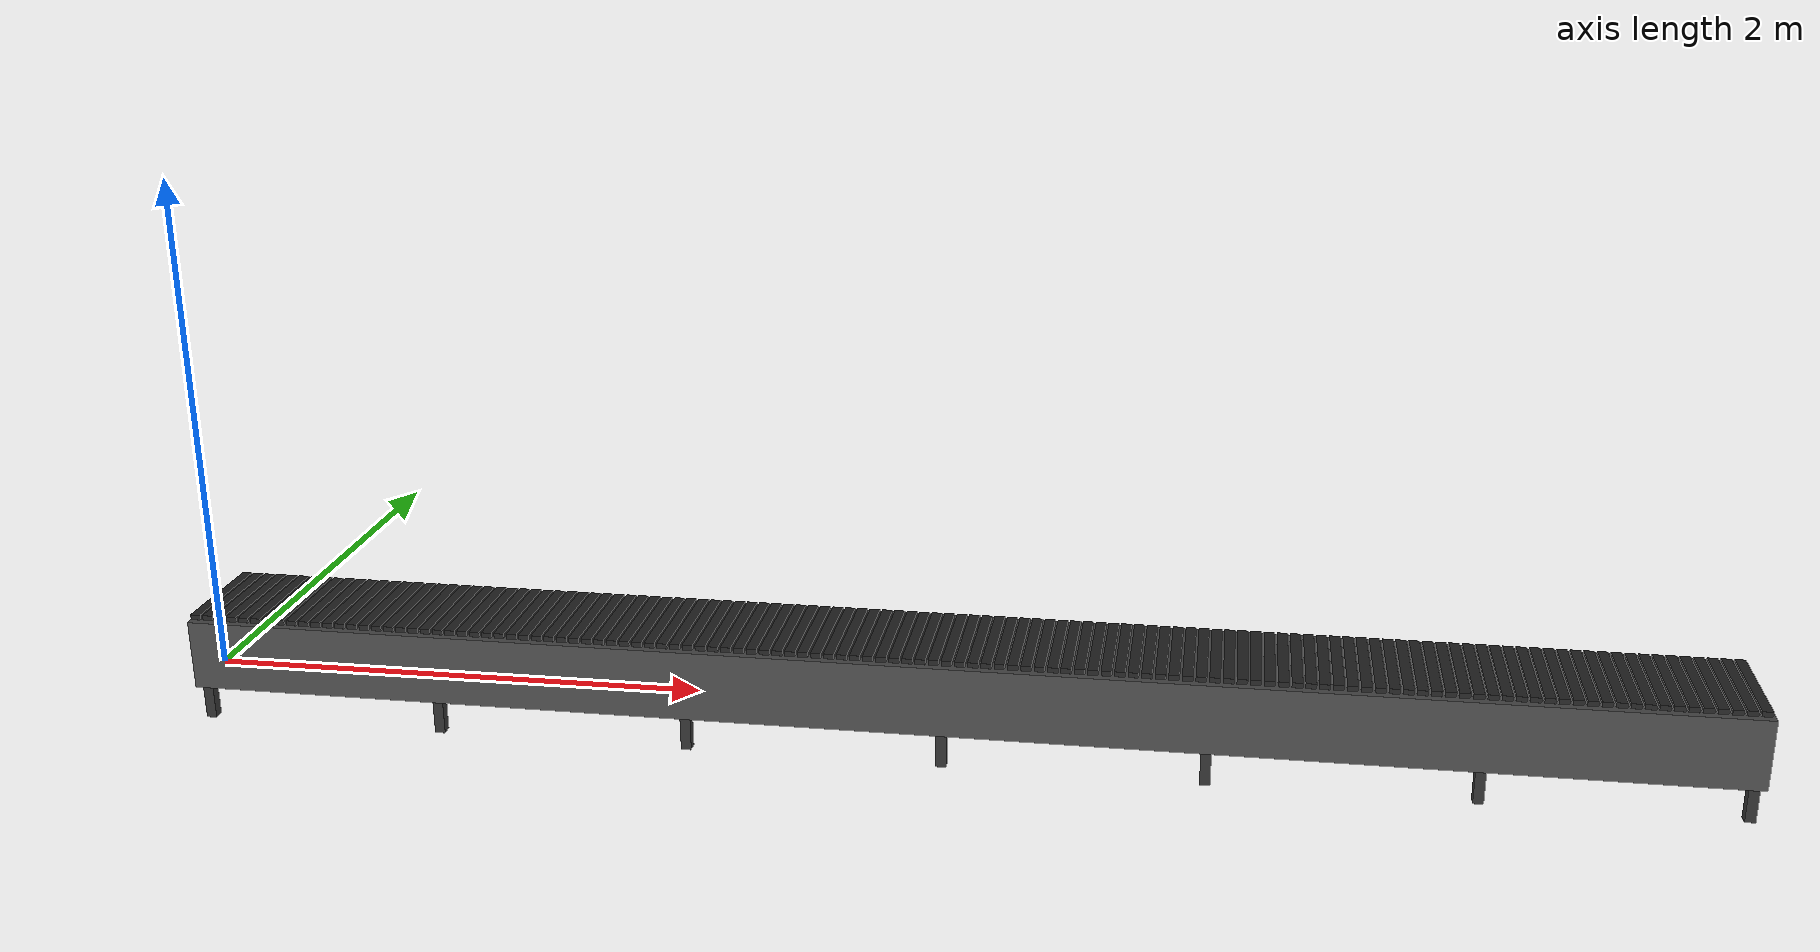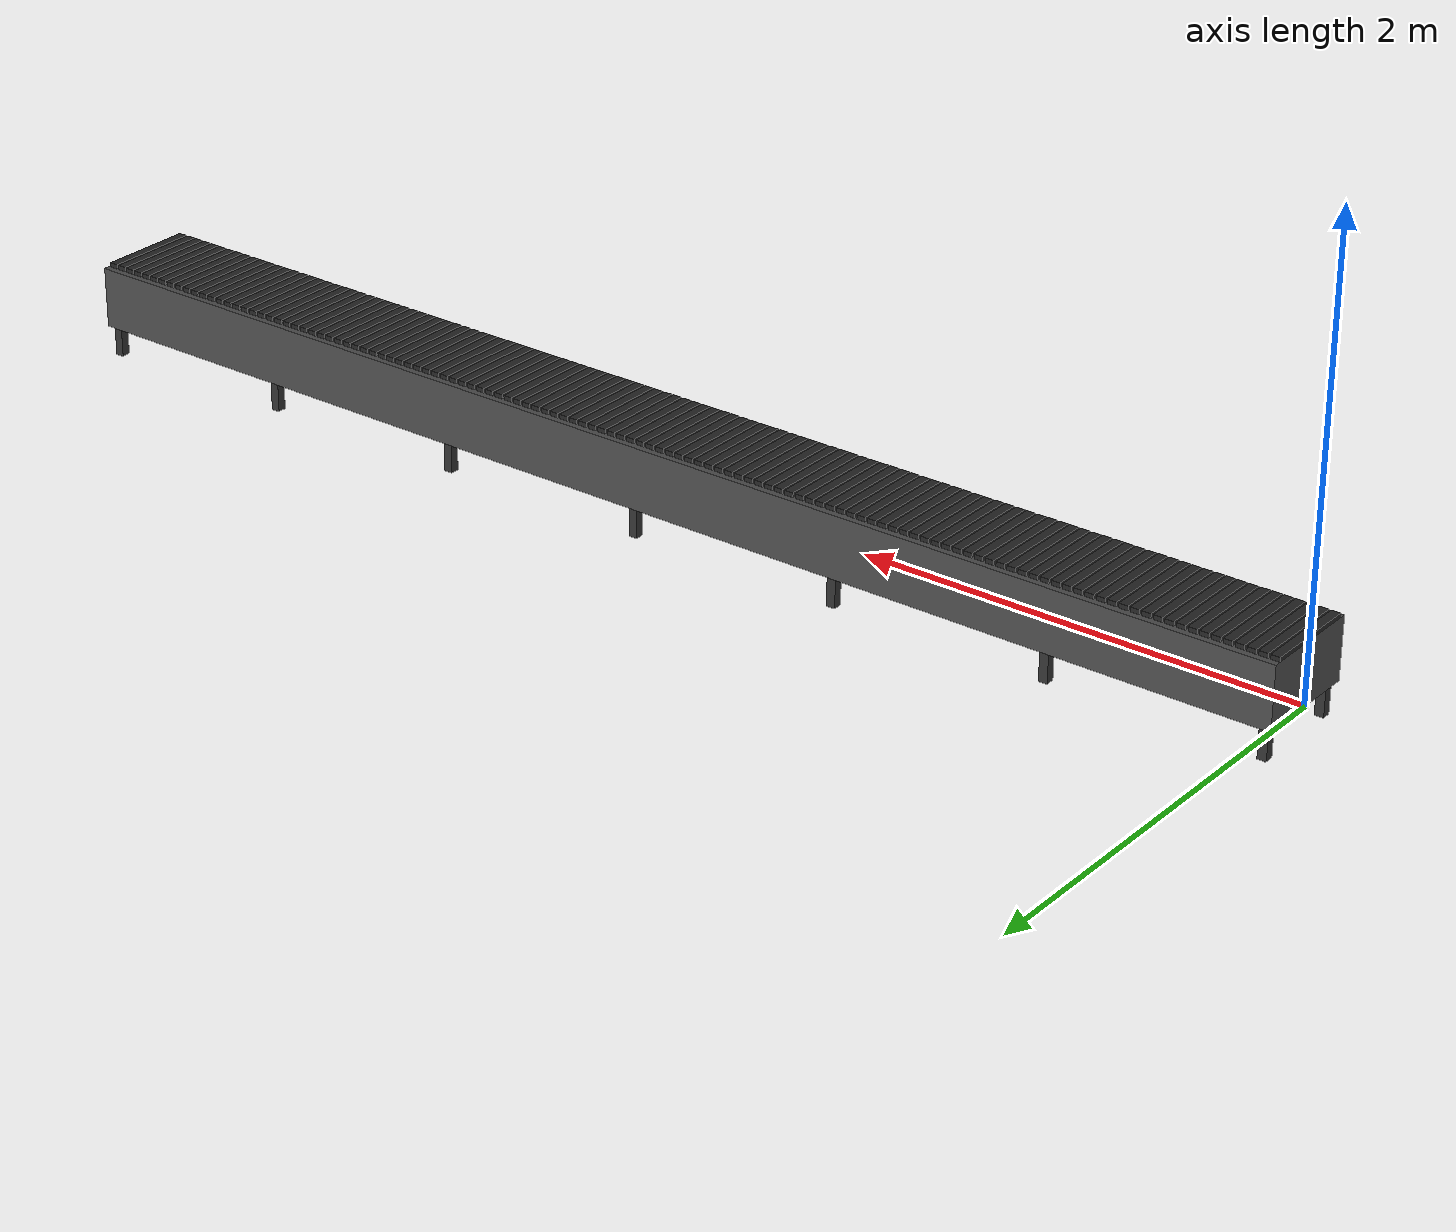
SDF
<?xml version="1.0" ?>
<sdf version="1.8">
  <model name="conveyor_belt">

    <model name="conveyor_frame">
    <self_collide>true</self_collide>
    <pose>0 0 0 0 0 0</pose>
    <include merge="true">
      <uri>package://sml_description/models/conveyor_frame_6m</uri>
    </include>
    </model>

    <plugin filename="InfiniteConveyorPlugin" name="conveyor::InfiniteConveyor">
      <belt_speed>0.2</belt_speed>
      <end_x>6.02</end_x>
      <num_slats>120</num_slats>
      <slat_pitch>0.05</slat_pitch>
      <first_slat_x>0.02</first_slat_x>
      <slat_prefix>slat</slat_prefix>
      <cmd_vel_topic>/conveyor/cmd_vel</cmd_vel_topic>
    </plugin>

  <model name="slat_0">
    <pose>0.02 0 0.29 0 0 0</pose>
    <include merge="true"><uri>package://sml_description/models/slat</uri></include>
    <joint name="slat_0_joint" type="prismatic"><parent>world</parent><child>link</child><axis><xyz>1 0 0</xyz><limit><lower>-1e9</lower><upper>1e9</upper><effort>1e9</effort><velocity>10</velocity></limit></axis></joint>
  </model>
  <model name="slat_1">
    <pose>0.07 0 0.29 0 0 0</pose>
    <include merge="true"><uri>package://sml_description/models/slat</uri></include>
    <joint name="slat_1_joint" type="prismatic"><parent>world</parent><child>link</child><axis><xyz>1 0 0</xyz><limit><lower>-1e9</lower><upper>1e9</upper><effort>1e9</effort><velocity>10</velocity></limit></axis></joint>
  </model>
  <model name="slat_2">
    <pose>0.12 0 0.29 0 0 0</pose>
    <include merge="true"><uri>package://sml_description/models/slat</uri></include>
    <joint name="slat_2_joint" type="prismatic"><parent>world</parent><child>link</child><axis><xyz>1 0 0</xyz><limit><lower>-1e9</lower><upper>1e9</upper><effort>1e9</effort><velocity>10</velocity></limit></axis></joint>
  </model>
  <model name="slat_3">
    <pose>0.17 0 0.29 0 0 0</pose>
    <include merge="true"><uri>package://sml_description/models/slat</uri></include>
    <joint name="slat_3_joint" type="prismatic"><parent>world</parent><child>link</child><axis><xyz>1 0 0</xyz><limit><lower>-1e9</lower><upper>1e9</upper><effort>1e9</effort><velocity>10</velocity></limit></axis></joint>
  </model>
  <model name="slat_4">
    <pose>0.22 0 0.29 0 0 0</pose>
    <include merge="true"><uri>package://sml_description/models/slat</uri></include>
    <joint name="slat_4_joint" type="prismatic"><parent>world</parent><child>link</child><axis><xyz>1 0 0</xyz><limit><lower>-1e9</lower><upper>1e9</upper><effort>1e9</effort><velocity>10</velocity></limit></axis></joint>
  </model>
  <model name="slat_5">
    <pose>0.27 0 0.29 0 0 0</pose>
    <include merge="true"><uri>package://sml_description/models/slat</uri></include>
    <joint name="slat_5_joint" type="prismatic"><parent>world</parent><child>link</child><axis><xyz>1 0 0</xyz><limit><lower>-1e9</lower><upper>1e9</upper><effort>1e9</effort><velocity>10</velocity></limit></axis></joint>
  </model>
  <model name="slat_6">
    <pose>0.32 0 0.29 0 0 0</pose>
    <include merge="true"><uri>package://sml_description/models/slat</uri></include>
    <joint name="slat_6_joint" type="prismatic"><parent>world</parent><child>link</child><axis><xyz>1 0 0</xyz><limit><lower>-1e9</lower><upper>1e9</upper><effort>1e9</effort><velocity>10</velocity></limit></axis></joint>
  </model>
  <model name="slat_7">
    <pose>0.37 0 0.29 0 0 0</pose>
    <include merge="true"><uri>package://sml_description/models/slat</uri></include>
    <joint name="slat_7_joint" type="prismatic"><parent>world</parent><child>link</child><axis><xyz>1 0 0</xyz><limit><lower>-1e9</lower><upper>1e9</upper><effort>1e9</effort><velocity>10</velocity></limit></axis></joint>
  </model>
  <model name="slat_8">
    <pose>0.42 0 0.29 0 0 0</pose>
    <include merge="true"><uri>package://sml_description/models/slat</uri></include>
    <joint name="slat_8_joint" type="prismatic"><parent>world</parent><child>link</child><axis><xyz>1 0 0</xyz><limit><lower>-1e9</lower><upper>1e9</upper><effort>1e9</effort><velocity>10</velocity></limit></axis></joint>
  </model>
  <model name="slat_9">
    <pose>0.47 0 0.29 0 0 0</pose>
    <include merge="true"><uri>package://sml_description/models/slat</uri></include>
    <joint name="slat_9_joint" type="prismatic"><parent>world</parent><child>link</child><axis><xyz>1 0 0</xyz><limit><lower>-1e9</lower><upper>1e9</upper><effort>1e9</effort><velocity>10</velocity></limit></axis></joint>
  </model>
  <model name="slat_10">
    <pose>0.52 0 0.29 0 0 0</pose>
    <include merge="true"><uri>package://sml_description/models/slat</uri></include>
    <joint name="slat_10_joint" type="prismatic"><parent>world</parent><child>link</child><axis><xyz>1 0 0</xyz><limit><lower>-1e9</lower><upper>1e9</upper><effort>1e9</effort><velocity>10</velocity></limit></axis></joint>
  </model>
  <model name="slat_11">
    <pose>0.57 0 0.29 0 0 0</pose>
    <include merge="true"><uri>package://sml_description/models/slat</uri></include>
    <joint name="slat_11_joint" type="prismatic"><parent>world</parent><child>link</child><axis><xyz>1 0 0</xyz><limit><lower>-1e9</lower><upper>1e9</upper><effort>1e9</effort><velocity>10</velocity></limit></axis></joint>
  </model>
  <model name="slat_12">
    <pose>0.62 0 0.29 0 0 0</pose>
    <include merge="true"><uri>package://sml_description/models/slat</uri></include>
    <joint name="slat_12_joint" type="prismatic"><parent>world</parent><child>link</child><axis><xyz>1 0 0</xyz><limit><lower>-1e9</lower><upper>1e9</upper><effort>1e9</effort><velocity>10</velocity></limit></axis></joint>
  </model>
  <model name="slat_13">
    <pose>0.67 0 0.29 0 0 0</pose>
    <include merge="true"><uri>package://sml_description/models/slat</uri></include>
    <joint name="slat_13_joint" type="prismatic"><parent>world</parent><child>link</child><axis><xyz>1 0 0</xyz><limit><lower>-1e9</lower><upper>1e9</upper><effort>1e9</effort><velocity>10</velocity></limit></axis></joint>
  </model>
  <model name="slat_14">
    <pose>0.72 0 0.29 0 0 0</pose>
    <include merge="true"><uri>package://sml_description/models/slat</uri></include>
    <joint name="slat_14_joint" type="prismatic"><parent>world</parent><child>link</child><axis><xyz>1 0 0</xyz><limit><lower>-1e9</lower><upper>1e9</upper><effort>1e9</effort><velocity>10</velocity></limit></axis></joint>
  </model>
  <model name="slat_15">
    <pose>0.77 0 0.29 0 0 0</pose>
    <include merge="true"><uri>package://sml_description/models/slat</uri></include>
    <joint name="slat_15_joint" type="prismatic"><parent>world</parent><child>link</child><axis><xyz>1 0 0</xyz><limit><lower>-1e9</lower><upper>1e9</upper><effort>1e9</effort><velocity>10</velocity></limit></axis></joint>
  </model>
  <model name="slat_16">
    <pose>0.82 0 0.29 0 0 0</pose>
    <include merge="true"><uri>package://sml_description/models/slat</uri></include>
    <joint name="slat_16_joint" type="prismatic"><parent>world</parent><child>link</child><axis><xyz>1 0 0</xyz><limit><lower>-1e9</lower><upper>1e9</upper><effort>1e9</effort><velocity>10</velocity></limit></axis></joint>
  </model>
  <model name="slat_17">
    <pose>0.87 0 0.29 0 0 0</pose>
    <include merge="true"><uri>package://sml_description/models/slat</uri></include>
    <joint name="slat_17_joint" type="prismatic"><parent>world</parent><child>link</child><axis><xyz>1 0 0</xyz><limit><lower>-1e9</lower><upper>1e9</upper><effort>1e9</effort><velocity>10</velocity></limit></axis></joint>
  </model>
  <model name="slat_18">
    <pose>0.92 0 0.29 0 0 0</pose>
    <include merge="true"><uri>package://sml_description/models/slat</uri></include>
    <joint name="slat_18_joint" type="prismatic"><parent>world</parent><child>link</child><axis><xyz>1 0 0</xyz><limit><lower>-1e9</lower><upper>1e9</upper><effort>1e9</effort><velocity>10</velocity></limit></axis></joint>
  </model>
  <model name="slat_19">
    <pose>0.97 0 0.29 0 0 0</pose>
    <include merge="true"><uri>package://sml_description/models/slat</uri></include>
    <joint name="slat_19_joint" type="prismatic"><parent>world</parent><child>link</child><axis><xyz>1 0 0</xyz><limit><lower>-1e9</lower><upper>1e9</upper><effort>1e9</effort><velocity>10</velocity></limit></axis></joint>
  </model>
  <model name="slat_20">
    <pose>1.02 0 0.29 0 0 0</pose>
    <include merge="true"><uri>package://sml_description/models/slat</uri></include>
    <joint name="slat_20_joint" type="prismatic"><parent>world</parent><child>link</child><axis><xyz>1 0 0</xyz><limit><lower>-1e9</lower><upper>1e9</upper><effort>1e9</effort><velocity>10</velocity></limit></axis></joint>
  </model>
  <model name="slat_21">
    <pose>1.07 0 0.29 0 0 0</pose>
    <include merge="true"><uri>package://sml_description/models/slat</uri></include>
    <joint name="slat_21_joint" type="prismatic"><parent>world</parent><child>link</child><axis><xyz>1 0 0</xyz><limit><lower>-1e9</lower><upper>1e9</upper><effort>1e9</effort><velocity>10</velocity></limit></axis></joint>
  </model>
  <model name="slat_22">
    <pose>1.12 0 0.29 0 0 0</pose>
    <include merge="true"><uri>package://sml_description/models/slat</uri></include>
    <joint name="slat_22_joint" type="prismatic"><parent>world</parent><child>link</child><axis><xyz>1 0 0</xyz><limit><lower>-1e9</lower><upper>1e9</upper><effort>1e9</effort><velocity>10</velocity></limit></axis></joint>
  </model>
  <model name="slat_23">
    <pose>1.17 0 0.29 0 0 0</pose>
    <include merge="true"><uri>package://sml_description/models/slat</uri></include>
    <joint name="slat_23_joint" type="prismatic"><parent>world</parent><child>link</child><axis><xyz>1 0 0</xyz><limit><lower>-1e9</lower><upper>1e9</upper><effort>1e9</effort><velocity>10</velocity></limit></axis></joint>
  </model>
  <model name="slat_24">
    <pose>1.22 0 0.29 0 0 0</pose>
    <include merge="true"><uri>package://sml_description/models/slat</uri></include>
    <joint name="slat_24_joint" type="prismatic"><parent>world</parent><child>link</child><axis><xyz>1 0 0</xyz><limit><lower>-1e9</lower><upper>1e9</upper><effort>1e9</effort><velocity>10</velocity></limit></axis></joint>
  </model>
  <model name="slat_25">
    <pose>1.27 0 0.29 0 0 0</pose>
    <include merge="true"><uri>package://sml_description/models/slat</uri></include>
    <joint name="slat_25_joint" type="prismatic"><parent>world</parent><child>link</child><axis><xyz>1 0 0</xyz><limit><lower>-1e9</lower><upper>1e9</upper><effort>1e9</effort><velocity>10</velocity></limit></axis></joint>
  </model>
  <model name="slat_26">
    <pose>1.32 0 0.29 0 0 0</pose>
    <include merge="true"><uri>package://sml_description/models/slat</uri></include>
    <joint name="slat_26_joint" type="prismatic"><parent>world</parent><child>link</child><axis><xyz>1 0 0</xyz><limit><lower>-1e9</lower><upper>1e9</upper><effort>1e9</effort><velocity>10</velocity></limit></axis></joint>
  </model>
  <model name="slat_27">
    <pose>1.37 0 0.29 0 0 0</pose>
    <include merge="true"><uri>package://sml_description/models/slat</uri></include>
    <joint name="slat_27_joint" type="prismatic"><parent>world</parent><child>link</child><axis><xyz>1 0 0</xyz><limit><lower>-1e9</lower><upper>1e9</upper><effort>1e9</effort><velocity>10</velocity></limit></axis></joint>
  </model>
  <model name="slat_28">
    <pose>1.42 0 0.29 0 0 0</pose>
    <include merge="true"><uri>package://sml_description/models/slat</uri></include>
    <joint name="slat_28_joint" type="prismatic"><parent>world</parent><child>link</child><axis><xyz>1 0 0</xyz><limit><lower>-1e9</lower><upper>1e9</upper><effort>1e9</effort><velocity>10</velocity></limit></axis></joint>
  </model>
  <model name="slat_29">
    <pose>1.47 0 0.29 0 0 0</pose>
    <include merge="true"><uri>package://sml_description/models/slat</uri></include>
    <joint name="slat_29_joint" type="prismatic"><parent>world</parent><child>link</child><axis><xyz>1 0 0</xyz><limit><lower>-1e9</lower><upper>1e9</upper><effort>1e9</effort><velocity>10</velocity></limit></axis></joint>
  </model>
  <model name="slat_30">
    <pose>1.52 0 0.29 0 0 0</pose>
    <include merge="true"><uri>package://sml_description/models/slat</uri></include>
    <joint name="slat_30_joint" type="prismatic"><parent>world</parent><child>link</child><axis><xyz>1 0 0</xyz><limit><lower>-1e9</lower><upper>1e9</upper><effort>1e9</effort><velocity>10</velocity></limit></axis></joint>
  </model>
  <model name="slat_31">
    <pose>1.57 0 0.29 0 0 0</pose>
    <include merge="true"><uri>package://sml_description/models/slat</uri></include>
    <joint name="slat_31_joint" type="prismatic"><parent>world</parent><child>link</child><axis><xyz>1 0 0</xyz><limit><lower>-1e9</lower><upper>1e9</upper><effort>1e9</effort><velocity>10</velocity></limit></axis></joint>
  </model>
  <model name="slat_32">
    <pose>1.62 0 0.29 0 0 0</pose>
    <include merge="true"><uri>package://sml_description/models/slat</uri></include>
    <joint name="slat_32_joint" type="prismatic"><parent>world</parent><child>link</child><axis><xyz>1 0 0</xyz><limit><lower>-1e9</lower><upper>1e9</upper><effort>1e9</effort><velocity>10</velocity></limit></axis></joint>
  </model>
  <model name="slat_33">
    <pose>1.67 0 0.29 0 0 0</pose>
    <include merge="true"><uri>package://sml_description/models/slat</uri></include>
    <joint name="slat_33_joint" type="prismatic"><parent>world</parent><child>link</child><axis><xyz>1 0 0</xyz><limit><lower>-1e9</lower><upper>1e9</upper><effort>1e9</effort><velocity>10</velocity></limit></axis></joint>
  </model>
  <model name="slat_34">
    <pose>1.72 0 0.29 0 0 0</pose>
    <include merge="true"><uri>package://sml_description/models/slat</uri></include>
    <joint name="slat_34_joint" type="prismatic"><parent>world</parent><child>link</child><axis><xyz>1 0 0</xyz><limit><lower>-1e9</lower><upper>1e9</upper><effort>1e9</effort><velocity>10</velocity></limit></axis></joint>
  </model>
  <model name="slat_35">
    <pose>1.77 0 0.29 0 0 0</pose>
    <include merge="true"><uri>package://sml_description/models/slat</uri></include>
    <joint name="slat_35_joint" type="prismatic"><parent>world</parent><child>link</child><axis><xyz>1 0 0</xyz><limit><lower>-1e9</lower><upper>1e9</upper><effort>1e9</effort><velocity>10</velocity></limit></axis></joint>
  </model>
  <model name="slat_36">
    <pose>1.82 0 0.29 0 0 0</pose>
    <include merge="true"><uri>package://sml_description/models/slat</uri></include>
    <joint name="slat_36_joint" type="prismatic"><parent>world</parent><child>link</child><axis><xyz>1 0 0</xyz><limit><lower>-1e9</lower><upper>1e9</upper><effort>1e9</effort><velocity>10</velocity></limit></axis></joint>
  </model>
  <model name="slat_37">
    <pose>1.87 0 0.29 0 0 0</pose>
    <include merge="true"><uri>package://sml_description/models/slat</uri></include>
    <joint name="slat_37_joint" type="prismatic"><parent>world</parent><child>link</child><axis><xyz>1 0 0</xyz><limit><lower>-1e9</lower><upper>1e9</upper><effort>1e9</effort><velocity>10</velocity></limit></axis></joint>
  </model>
  <model name="slat_38">
    <pose>1.92 0 0.29 0 0 0</pose>
    <include merge="true"><uri>package://sml_description/models/slat</uri></include>
    <joint name="slat_38_joint" type="prismatic"><parent>world</parent><child>link</child><axis><xyz>1 0 0</xyz><limit><lower>-1e9</lower><upper>1e9</upper><effort>1e9</effort><velocity>10</velocity></limit></axis></joint>
  </model>
  <model name="slat_39">
    <pose>1.97 0 0.29 0 0 0</pose>
    <include merge="true"><uri>package://sml_description/models/slat</uri></include>
    <joint name="slat_39_joint" type="prismatic"><parent>world</parent><child>link</child><axis><xyz>1 0 0</xyz><limit><lower>-1e9</lower><upper>1e9</upper><effort>1e9</effort><velocity>10</velocity></limit></axis></joint>
  </model>
  <model name="slat_40">
    <pose>2.02 0 0.29 0 0 0</pose>
    <include merge="true"><uri>package://sml_description/models/slat</uri></include>
    <joint name="slat_40_joint" type="prismatic"><parent>world</parent><child>link</child><axis><xyz>1 0 0</xyz><limit><lower>-1e9</lower><upper>1e9</upper><effort>1e9</effort><velocity>10</velocity></limit></axis></joint>
  </model>
  <model name="slat_41">
    <pose>2.07 0 0.29 0 0 0</pose>
    <include merge="true"><uri>package://sml_description/models/slat</uri></include>
    <joint name="slat_41_joint" type="prismatic"><parent>world</parent><child>link</child><axis><xyz>1 0 0</xyz><limit><lower>-1e9</lower><upper>1e9</upper><effort>1e9</effort><velocity>10</velocity></limit></axis></joint>
  </model>
  <model name="slat_42">
    <pose>2.12 0 0.29 0 0 0</pose>
    <include merge="true"><uri>package://sml_description/models/slat</uri></include>
    <joint name="slat_42_joint" type="prismatic"><parent>world</parent><child>link</child><axis><xyz>1 0 0</xyz><limit><lower>-1e9</lower><upper>1e9</upper><effort>1e9</effort><velocity>10</velocity></limit></axis></joint>
  </model>
  <model name="slat_43">
    <pose>2.17 0 0.29 0 0 0</pose>
    <include merge="true"><uri>package://sml_description/models/slat</uri></include>
    <joint name="slat_43_joint" type="prismatic"><parent>world</parent><child>link</child><axis><xyz>1 0 0</xyz><limit><lower>-1e9</lower><upper>1e9</upper><effort>1e9</effort><velocity>10</velocity></limit></axis></joint>
  </model>
  <model name="slat_44">
    <pose>2.22 0 0.29 0 0 0</pose>
    <include merge="true"><uri>package://sml_description/models/slat</uri></include>
    <joint name="slat_44_joint" type="prismatic"><parent>world</parent><child>link</child><axis><xyz>1 0 0</xyz><limit><lower>-1e9</lower><upper>1e9</upper><effort>1e9</effort><velocity>10</velocity></limit></axis></joint>
  </model>
  <model name="slat_45">
    <pose>2.27 0 0.29 0 0 0</pose>
    <include merge="true"><uri>package://sml_description/models/slat</uri></include>
    <joint name="slat_45_joint" type="prismatic"><parent>world</parent><child>link</child><axis><xyz>1 0 0</xyz><limit><lower>-1e9</lower><upper>1e9</upper><effort>1e9</effort><velocity>10</velocity></limit></axis></joint>
  </model>
  <model name="slat_46">
    <pose>2.32 0 0.29 0 0 0</pose>
    <include merge="true"><uri>package://sml_description/models/slat</uri></include>
    <joint name="slat_46_joint" type="prismatic"><parent>world</parent><child>link</child><axis><xyz>1 0 0</xyz><limit><lower>-1e9</lower><upper>1e9</upper><effort>1e9</effort><velocity>10</velocity></limit></axis></joint>
  </model>
  <model name="slat_47">
    <pose>2.37 0 0.29 0 0 0</pose>
    <include merge="true"><uri>package://sml_description/models/slat</uri></include>
    <joint name="slat_47_joint" type="prismatic"><parent>world</parent><child>link</child><axis><xyz>1 0 0</xyz><limit><lower>-1e9</lower><upper>1e9</upper><effort>1e9</effort><velocity>10</velocity></limit></axis></joint>
  </model>
  <model name="slat_48">
    <pose>2.42 0 0.29 0 0 0</pose>
    <include merge="true"><uri>package://sml_description/models/slat</uri></include>
    <joint name="slat_48_joint" type="prismatic"><parent>world</parent><child>link</child><axis><xyz>1 0 0</xyz><limit><lower>-1e9</lower><upper>1e9</upper><effort>1e9</effort><velocity>10</velocity></limit></axis></joint>
  </model>
  <model name="slat_49">
    <pose>2.47 0 0.29 0 0 0</pose>
    <include merge="true"><uri>package://sml_description/models/slat</uri></include>
    <joint name="slat_49_joint" type="prismatic"><parent>world</parent><child>link</child><axis><xyz>1 0 0</xyz><limit><lower>-1e9</lower><upper>1e9</upper><effort>1e9</effort><velocity>10</velocity></limit></axis></joint>
  </model>
  <model name="slat_50">
    <pose>2.52 0 0.29 0 0 0</pose>
    <include merge="true"><uri>package://sml_description/models/slat</uri></include>
    <joint name="slat_50_joint" type="prismatic"><parent>world</parent><child>link</child><axis><xyz>1 0 0</xyz><limit><lower>-1e9</lower><upper>1e9</upper><effort>1e9</effort><velocity>10</velocity></limit></axis></joint>
  </model>
  <model name="slat_51">
    <pose>2.57 0 0.29 0 0 0</pose>
    <include merge="true"><uri>package://sml_description/models/slat</uri></include>
    <joint name="slat_51_joint" type="prismatic"><parent>world</parent><child>link</child><axis><xyz>1 0 0</xyz><limit><lower>-1e9</lower><upper>1e9</upper><effort>1e9</effort><velocity>10</velocity></limit></axis></joint>
  </model>
  <model name="slat_52">
    <pose>2.62 0 0.29 0 0 0</pose>
    <include merge="true"><uri>package://sml_description/models/slat</uri></include>
    <joint name="slat_52_joint" type="prismatic"><parent>world</parent><child>link</child><axis><xyz>1 0 0</xyz><limit><lower>-1e9</lower><upper>1e9</upper><effort>1e9</effort><velocity>10</velocity></limit></axis></joint>
  </model>
  <model name="slat_53">
    <pose>2.67 0 0.29 0 0 0</pose>
    <include merge="true"><uri>package://sml_description/models/slat</uri></include>
    <joint name="slat_53_joint" type="prismatic"><parent>world</parent><child>link</child><axis><xyz>1 0 0</xyz><limit><lower>-1e9</lower><upper>1e9</upper><effort>1e9</effort><velocity>10</velocity></limit></axis></joint>
  </model>
  <model name="slat_54">
    <pose>2.72 0 0.29 0 0 0</pose>
    <include merge="true"><uri>package://sml_description/models/slat</uri></include>
    <joint name="slat_54_joint" type="prismatic"><parent>world</parent><child>link</child><axis><xyz>1 0 0</xyz><limit><lower>-1e9</lower><upper>1e9</upper><effort>1e9</effort><velocity>10</velocity></limit></axis></joint>
  </model>
  <model name="slat_55">
    <pose>2.77 0 0.29 0 0 0</pose>
    <include merge="true"><uri>package://sml_description/models/slat</uri></include>
    <joint name="slat_55_joint" type="prismatic"><parent>world</parent><child>link</child><axis><xyz>1 0 0</xyz><limit><lower>-1e9</lower><upper>1e9</upper><effort>1e9</effort><velocity>10</velocity></limit></axis></joint>
  </model>
  <model name="slat_56">
    <pose>2.82 0 0.29 0 0 0</pose>
    <include merge="true"><uri>package://sml_description/models/slat</uri></include>
    <joint name="slat_56_joint" type="prismatic"><parent>world</parent><child>link</child><axis><xyz>1 0 0</xyz><limit><lower>-1e9</lower><upper>1e9</upper><effort>1e9</effort><velocity>10</velocity></limit></axis></joint>
  </model>
  <model name="slat_57">
    <pose>2.87 0 0.29 0 0 0</pose>
    <include merge="true"><uri>package://sml_description/models/slat</uri></include>
    <joint name="slat_57_joint" type="prismatic"><parent>world</parent><child>link</child><axis><xyz>1 0 0</xyz><limit><lower>-1e9</lower><upper>1e9</upper><effort>1e9</effort><velocity>10</velocity></limit></axis></joint>
  </model>
  <model name="slat_58">
    <pose>2.92 0 0.29 0 0 0</pose>
    <include merge="true"><uri>package://sml_description/models/slat</uri></include>
    <joint name="slat_58_joint" type="prismatic"><parent>world</parent><child>link</child><axis><xyz>1 0 0</xyz><limit><lower>-1e9</lower><upper>1e9</upper><effort>1e9</effort><velocity>10</velocity></limit></axis></joint>
  </model>
  <model name="slat_59">
    <pose>2.97 0 0.29 0 0 0</pose>
    <include merge="true"><uri>package://sml_description/models/slat</uri></include>
    <joint name="slat_59_joint" type="prismatic"><parent>world</parent><child>link</child><axis><xyz>1 0 0</xyz><limit><lower>-1e9</lower><upper>1e9</upper><effort>1e9</effort><velocity>10</velocity></limit></axis></joint>
  </model>
  <model name="slat_60">
    <pose>3.02 0 0.29 0 0 0</pose>
    <include merge="true"><uri>package://sml_description/models/slat</uri></include>
    <joint name="slat_60_joint" type="prismatic"><parent>world</parent><child>link</child><axis><xyz>1 0 0</xyz><limit><lower>-1e9</lower><upper>1e9</upper><effort>1e9</effort><velocity>10</velocity></limit></axis></joint>
  </model>
  <model name="slat_61">
    <pose>3.07 0 0.29 0 0 0</pose>
    <include merge="true"><uri>package://sml_description/models/slat</uri></include>
    <joint name="slat_61_joint" type="prismatic"><parent>world</parent><child>link</child><axis><xyz>1 0 0</xyz><limit><lower>-1e9</lower><upper>1e9</upper><effort>1e9</effort><velocity>10</velocity></limit></axis></joint>
  </model>
  <model name="slat_62">
    <pose>3.12 0 0.29 0 0 0</pose>
    <include merge="true"><uri>package://sml_description/models/slat</uri></include>
    <joint name="slat_62_joint" type="prismatic"><parent>world</parent><child>link</child><axis><xyz>1 0 0</xyz><limit><lower>-1e9</lower><upper>1e9</upper><effort>1e9</effort><velocity>10</velocity></limit></axis></joint>
  </model>
  <model name="slat_63">
    <pose>3.17 0 0.29 0 0 0</pose>
    <include merge="true"><uri>package://sml_description/models/slat</uri></include>
    <joint name="slat_63_joint" type="prismatic"><parent>world</parent><child>link</child><axis><xyz>1 0 0</xyz><limit><lower>-1e9</lower><upper>1e9</upper><effort>1e9</effort><velocity>10</velocity></limit></axis></joint>
  </model>
  <model name="slat_64">
    <pose>3.22 0 0.29 0 0 0</pose>
    <include merge="true"><uri>package://sml_description/models/slat</uri></include>
    <joint name="slat_64_joint" type="prismatic"><parent>world</parent><child>link</child><axis><xyz>1 0 0</xyz><limit><lower>-1e9</lower><upper>1e9</upper><effort>1e9</effort><velocity>10</velocity></limit></axis></joint>
  </model>
  <model name="slat_65">
    <pose>3.27 0 0.29 0 0 0</pose>
    <include merge="true"><uri>package://sml_description/models/slat</uri></include>
    <joint name="slat_65_joint" type="prismatic"><parent>world</parent><child>link</child><axis><xyz>1 0 0</xyz><limit><lower>-1e9</lower><upper>1e9</upper><effort>1e9</effort><velocity>10</velocity></limit></axis></joint>
  </model>
  <model name="slat_66">
    <pose>3.32 0 0.29 0 0 0</pose>
    <include merge="true"><uri>package://sml_description/models/slat</uri></include>
    <joint name="slat_66_joint" type="prismatic"><parent>world</parent><child>link</child><axis><xyz>1 0 0</xyz><limit><lower>-1e9</lower><upper>1e9</upper><effort>1e9</effort><velocity>10</velocity></limit></axis></joint>
  </model>
  <model name="slat_67">
    <pose>3.37 0 0.29 0 0 0</pose>
    <include merge="true"><uri>package://sml_description/models/slat</uri></include>
    <joint name="slat_67_joint" type="prismatic"><parent>world</parent><child>link</child><axis><xyz>1 0 0</xyz><limit><lower>-1e9</lower><upper>1e9</upper><effort>1e9</effort><velocity>10</velocity></limit></axis></joint>
  </model>
  <model name="slat_68">
    <pose>3.42 0 0.29 0 0 0</pose>
    <include merge="true"><uri>package://sml_description/models/slat</uri></include>
    <joint name="slat_68_joint" type="prismatic"><parent>world</parent><child>link</child><axis><xyz>1 0 0</xyz><limit><lower>-1e9</lower><upper>1e9</upper><effort>1e9</effort><velocity>10</velocity></limit></axis></joint>
  </model>
  <model name="slat_69">
    <pose>3.47 0 0.29 0 0 0</pose>
    <include merge="true"><uri>package://sml_description/models/slat</uri></include>
    <joint name="slat_69_joint" type="prismatic"><parent>world</parent><child>link</child><axis><xyz>1 0 0</xyz><limit><lower>-1e9</lower><upper>1e9</upper><effort>1e9</effort><velocity>10</velocity></limit></axis></joint>
  </model>
  <model name="slat_70">
    <pose>3.52 0 0.29 0 0 0</pose>
    <include merge="true"><uri>package://sml_description/models/slat</uri></include>
    <joint name="slat_70_joint" type="prismatic"><parent>world</parent><child>link</child><axis><xyz>1 0 0</xyz><limit><lower>-1e9</lower><upper>1e9</upper><effort>1e9</effort><velocity>10</velocity></limit></axis></joint>
  </model>
  <model name="slat_71">
    <pose>3.57 0 0.29 0 0 0</pose>
    <include merge="true"><uri>package://sml_description/models/slat</uri></include>
    <joint name="slat_71_joint" type="prismatic"><parent>world</parent><child>link</child><axis><xyz>1 0 0</xyz><limit><lower>-1e9</lower><upper>1e9</upper><effort>1e9</effort><velocity>10</velocity></limit></axis></joint>
  </model>
  <model name="slat_72">
    <pose>3.62 0 0.29 0 0 0</pose>
    <include merge="true"><uri>package://sml_description/models/slat</uri></include>
    <joint name="slat_72_joint" type="prismatic"><parent>world</parent><child>link</child><axis><xyz>1 0 0</xyz><limit><lower>-1e9</lower><upper>1e9</upper><effort>1e9</effort><velocity>10</velocity></limit></axis></joint>
  </model>
  <model name="slat_73">
    <pose>3.67 0 0.29 0 0 0</pose>
    <include merge="true"><uri>package://sml_description/models/slat</uri></include>
    <joint name="slat_73_joint" type="prismatic"><parent>world</parent><child>link</child><axis><xyz>1 0 0</xyz><limit><lower>-1e9</lower><upper>1e9</upper><effort>1e9</effort><velocity>10</velocity></limit></axis></joint>
  </model>
  <model name="slat_74">
    <pose>3.72 0 0.29 0 0 0</pose>
    <include merge="true"><uri>package://sml_description/models/slat</uri></include>
    <joint name="slat_74_joint" type="prismatic"><parent>world</parent><child>link</child><axis><xyz>1 0 0</xyz><limit><lower>-1e9</lower><upper>1e9</upper><effort>1e9</effort><velocity>10</velocity></limit></axis></joint>
  </model>
  <model name="slat_75">
    <pose>3.77 0 0.29 0 0 0</pose>
    <include merge="true"><uri>package://sml_description/models/slat</uri></include>
    <joint name="slat_75_joint" type="prismatic"><parent>world</parent><child>link</child><axis><xyz>1 0 0</xyz><limit><lower>-1e9</lower><upper>1e9</upper><effort>1e9</effort><velocity>10</velocity></limit></axis></joint>
  </model>
  <model name="slat_76">
    <pose>3.82 0 0.29 0 0 0</pose>
    <include merge="true"><uri>package://sml_description/models/slat</uri></include>
    <joint name="slat_76_joint" type="prismatic"><parent>world</parent><child>link</child><axis><xyz>1 0 0</xyz><limit><lower>-1e9</lower><upper>1e9</upper><effort>1e9</effort><velocity>10</velocity></limit></axis></joint>
  </model>
  <model name="slat_77">
    <pose>3.87 0 0.29 0 0 0</pose>
    <include merge="true"><uri>package://sml_description/models/slat</uri></include>
    <joint name="slat_77_joint" type="prismatic"><parent>world</parent><child>link</child><axis><xyz>1 0 0</xyz><limit><lower>-1e9</lower><upper>1e9</upper><effort>1e9</effort><velocity>10</velocity></limit></axis></joint>
  </model>
  <model name="slat_78">
    <pose>3.92 0 0.29 0 0 0</pose>
    <include merge="true"><uri>package://sml_description/models/slat</uri></include>
    <joint name="slat_78_joint" type="prismatic"><parent>world</parent><child>link</child><axis><xyz>1 0 0</xyz><limit><lower>-1e9</lower><upper>1e9</upper><effort>1e9</effort><velocity>10</velocity></limit></axis></joint>
  </model>
  <model name="slat_79">
    <pose>3.97 0 0.29 0 0 0</pose>
    <include merge="true"><uri>package://sml_description/models/slat</uri></include>
    <joint name="slat_79_joint" type="prismatic"><parent>world</parent><child>link</child><axis><xyz>1 0 0</xyz><limit><lower>-1e9</lower><upper>1e9</upper><effort>1e9</effort><velocity>10</velocity></limit></axis></joint>
  </model>
  <model name="slat_80">
    <pose>4.02 0 0.29 0 0 0</pose>
    <include merge="true"><uri>package://sml_description/models/slat</uri></include>
    <joint name="slat_80_joint" type="prismatic"><parent>world</parent><child>link</child><axis><xyz>1 0 0</xyz><limit><lower>-1e9</lower><upper>1e9</upper><effort>1e9</effort><velocity>10</velocity></limit></axis></joint>
  </model>
  <model name="slat_81">
    <pose>4.07 0 0.29 0 0 0</pose>
    <include merge="true"><uri>package://sml_description/models/slat</uri></include>
    <joint name="slat_81_joint" type="prismatic"><parent>world</parent><child>link</child><axis><xyz>1 0 0</xyz><limit><lower>-1e9</lower><upper>1e9</upper><effort>1e9</effort><velocity>10</velocity></limit></axis></joint>
  </model>
  <model name="slat_82">
    <pose>4.12 0 0.29 0 0 0</pose>
    <include merge="true"><uri>package://sml_description/models/slat</uri></include>
    <joint name="slat_82_joint" type="prismatic"><parent>world</parent><child>link</child><axis><xyz>1 0 0</xyz><limit><lower>-1e9</lower><upper>1e9</upper><effort>1e9</effort><velocity>10</velocity></limit></axis></joint>
  </model>
  <model name="slat_83">
    <pose>4.17 0 0.29 0 0 0</pose>
    <include merge="true"><uri>package://sml_description/models/slat</uri></include>
    <joint name="slat_83_joint" type="prismatic"><parent>world</parent><child>link</child><axis><xyz>1 0 0</xyz><limit><lower>-1e9</lower><upper>1e9</upper><effort>1e9</effort><velocity>10</velocity></limit></axis></joint>
  </model>
  <model name="slat_84">
    <pose>4.22 0 0.29 0 0 0</pose>
    <include merge="true"><uri>package://sml_description/models/slat</uri></include>
    <joint name="slat_84_joint" type="prismatic"><parent>world</parent><child>link</child><axis><xyz>1 0 0</xyz><limit><lower>-1e9</lower><upper>1e9</upper><effort>1e9</effort><velocity>10</velocity></limit></axis></joint>
  </model>
  <model name="slat_85">
    <pose>4.27 0 0.29 0 0 0</pose>
    <include merge="true"><uri>package://sml_description/models/slat</uri></include>
    <joint name="slat_85_joint" type="prismatic"><parent>world</parent><child>link</child><axis><xyz>1 0 0</xyz><limit><lower>-1e9</lower><upper>1e9</upper><effort>1e9</effort><velocity>10</velocity></limit></axis></joint>
  </model>
  <model name="slat_86">
    <pose>4.32 0 0.29 0 0 0</pose>
    <include merge="true"><uri>package://sml_description/models/slat</uri></include>
    <joint name="slat_86_joint" type="prismatic"><parent>world</parent><child>link</child><axis><xyz>1 0 0</xyz><limit><lower>-1e9</lower><upper>1e9</upper><effort>1e9</effort><velocity>10</velocity></limit></axis></joint>
  </model>
  <model name="slat_87">
    <pose>4.37 0 0.29 0 0 0</pose>
    <include merge="true"><uri>package://sml_description/models/slat</uri></include>
    <joint name="slat_87_joint" type="prismatic"><parent>world</parent><child>link</child><axis><xyz>1 0 0</xyz><limit><lower>-1e9</lower><upper>1e9</upper><effort>1e9</effort><velocity>10</velocity></limit></axis></joint>
  </model>
  <model name="slat_88">
    <pose>4.42 0 0.29 0 0 0</pose>
    <include merge="true"><uri>package://sml_description/models/slat</uri></include>
    <joint name="slat_88_joint" type="prismatic"><parent>world</parent><child>link</child><axis><xyz>1 0 0</xyz><limit><lower>-1e9</lower><upper>1e9</upper><effort>1e9</effort><velocity>10</velocity></limit></axis></joint>
  </model>
  <model name="slat_89">
    <pose>4.47 0 0.29 0 0 0</pose>
    <include merge="true"><uri>package://sml_description/models/slat</uri></include>
    <joint name="slat_89_joint" type="prismatic"><parent>world</parent><child>link</child><axis><xyz>1 0 0</xyz><limit><lower>-1e9</lower><upper>1e9</upper><effort>1e9</effort><velocity>10</velocity></limit></axis></joint>
  </model>
  <model name="slat_90">
    <pose>4.52 0 0.29 0 0 0</pose>
    <include merge="true"><uri>package://sml_description/models/slat</uri></include>
    <joint name="slat_90_joint" type="prismatic"><parent>world</parent><child>link</child><axis><xyz>1 0 0</xyz><limit><lower>-1e9</lower><upper>1e9</upper><effort>1e9</effort><velocity>10</velocity></limit></axis></joint>
  </model>
  <model name="slat_91">
    <pose>4.57 0 0.29 0 0 0</pose>
    <include merge="true"><uri>package://sml_description/models/slat</uri></include>
    <joint name="slat_91_joint" type="prismatic"><parent>world</parent><child>link</child><axis><xyz>1 0 0</xyz><limit><lower>-1e9</lower><upper>1e9</upper><effort>1e9</effort><velocity>10</velocity></limit></axis></joint>
  </model>
  <model name="slat_92">
    <pose>4.62 0 0.29 0 0 0</pose>
    <include merge="true"><uri>package://sml_description/models/slat</uri></include>
    <joint name="slat_92_joint" type="prismatic"><parent>world</parent><child>link</child><axis><xyz>1 0 0</xyz><limit><lower>-1e9</lower><upper>1e9</upper><effort>1e9</effort><velocity>10</velocity></limit></axis></joint>
  </model>
  <model name="slat_93">
    <pose>4.67 0 0.29 0 0 0</pose>
    <include merge="true"><uri>package://sml_description/models/slat</uri></include>
    <joint name="slat_93_joint" type="prismatic"><parent>world</parent><child>link</child><axis><xyz>1 0 0</xyz><limit><lower>-1e9</lower><upper>1e9</upper><effort>1e9</effort><velocity>10</velocity></limit></axis></joint>
  </model>
  <model name="slat_94">
    <pose>4.72 0 0.29 0 0 0</pose>
    <include merge="true"><uri>package://sml_description/models/slat</uri></include>
    <joint name="slat_94_joint" type="prismatic"><parent>world</parent><child>link</child><axis><xyz>1 0 0</xyz><limit><lower>-1e9</lower><upper>1e9</upper><effort>1e9</effort><velocity>10</velocity></limit></axis></joint>
  </model>
  <model name="slat_95">
    <pose>4.77 0 0.29 0 0 0</pose>
    <include merge="true"><uri>package://sml_description/models/slat</uri></include>
    <joint name="slat_95_joint" type="prismatic"><parent>world</parent><child>link</child><axis><xyz>1 0 0</xyz><limit><lower>-1e9</lower><upper>1e9</upper><effort>1e9</effort><velocity>10</velocity></limit></axis></joint>
  </model>
  <model name="slat_96">
    <pose>4.82 0 0.29 0 0 0</pose>
    <include merge="true"><uri>package://sml_description/models/slat</uri></include>
    <joint name="slat_96_joint" type="prismatic"><parent>world</parent><child>link</child><axis><xyz>1 0 0</xyz><limit><lower>-1e9</lower><upper>1e9</upper><effort>1e9</effort><velocity>10</velocity></limit></axis></joint>
  </model>
  <model name="slat_97">
    <pose>4.87 0 0.29 0 0 0</pose>
    <include merge="true"><uri>package://sml_description/models/slat</uri></include>
    <joint name="slat_97_joint" type="prismatic"><parent>world</parent><child>link</child><axis><xyz>1 0 0</xyz><limit><lower>-1e9</lower><upper>1e9</upper><effort>1e9</effort><velocity>10</velocity></limit></axis></joint>
  </model>
  <model name="slat_98">
    <pose>4.92 0 0.29 0 0 0</pose>
    <include merge="true"><uri>package://sml_description/models/slat</uri></include>
    <joint name="slat_98_joint" type="prismatic"><parent>world</parent><child>link</child><axis><xyz>1 0 0</xyz><limit><lower>-1e9</lower><upper>1e9</upper><effort>1e9</effort><velocity>10</velocity></limit></axis></joint>
  </model>
  <model name="slat_99">
    <pose>4.97 0 0.29 0 0 0</pose>
    <include merge="true"><uri>package://sml_description/models/slat</uri></include>
    <joint name="slat_99_joint" type="prismatic"><parent>world</parent><child>link</child><axis><xyz>1 0 0</xyz><limit><lower>-1e9</lower><upper>1e9</upper><effort>1e9</effort><velocity>10</velocity></limit></axis></joint>
  </model>
  <model name="slat_100">
    <pose>5.02 0 0.29 0 0 0</pose>
    <include merge="true"><uri>package://sml_description/models/slat</uri></include>
    <joint name="slat_100_joint" type="prismatic"><parent>world</parent><child>link</child><axis><xyz>1 0 0</xyz><limit><lower>-1e9</lower><upper>1e9</upper><effort>1e9</effort><velocity>10</velocity></limit></axis></joint>
  </model>
  <model name="slat_101">
    <pose>5.07 0 0.29 0 0 0</pose>
    <include merge="true"><uri>package://sml_description/models/slat</uri></include>
    <joint name="slat_101_joint" type="prismatic"><parent>world</parent><child>link</child><axis><xyz>1 0 0</xyz><limit><lower>-1e9</lower><upper>1e9</upper><effort>1e9</effort><velocity>10</velocity></limit></axis></joint>
  </model>
  <model name="slat_102">
    <pose>5.12 0 0.29 0 0 0</pose>
    <include merge="true"><uri>package://sml_description/models/slat</uri></include>
    <joint name="slat_102_joint" type="prismatic"><parent>world</parent><child>link</child><axis><xyz>1 0 0</xyz><limit><lower>-1e9</lower><upper>1e9</upper><effort>1e9</effort><velocity>10</velocity></limit></axis></joint>
  </model>
  <model name="slat_103">
    <pose>5.17 0 0.29 0 0 0</pose>
    <include merge="true"><uri>package://sml_description/models/slat</uri></include>
    <joint name="slat_103_joint" type="prismatic"><parent>world</parent><child>link</child><axis><xyz>1 0 0</xyz><limit><lower>-1e9</lower><upper>1e9</upper><effort>1e9</effort><velocity>10</velocity></limit></axis></joint>
  </model>
  <model name="slat_104">
    <pose>5.22 0 0.29 0 0 0</pose>
    <include merge="true"><uri>package://sml_description/models/slat</uri></include>
    <joint name="slat_104_joint" type="prismatic"><parent>world</parent><child>link</child><axis><xyz>1 0 0</xyz><limit><lower>-1e9</lower><upper>1e9</upper><effort>1e9</effort><velocity>10</velocity></limit></axis></joint>
  </model>
  <model name="slat_105">
    <pose>5.27 0 0.29 0 0 0</pose>
    <include merge="true"><uri>package://sml_description/models/slat</uri></include>
    <joint name="slat_105_joint" type="prismatic"><parent>world</parent><child>link</child><axis><xyz>1 0 0</xyz><limit><lower>-1e9</lower><upper>1e9</upper><effort>1e9</effort><velocity>10</velocity></limit></axis></joint>
  </model>
  <model name="slat_106">
    <pose>5.32 0 0.29 0 0 0</pose>
    <include merge="true"><uri>package://sml_description/models/slat</uri></include>
    <joint name="slat_106_joint" type="prismatic"><parent>world</parent><child>link</child><axis><xyz>1 0 0</xyz><limit><lower>-1e9</lower><upper>1e9</upper><effort>1e9</effort><velocity>10</velocity></limit></axis></joint>
  </model>
  <model name="slat_107">
    <pose>5.37 0 0.29 0 0 0</pose>
    <include merge="true"><uri>package://sml_description/models/slat</uri></include>
    <joint name="slat_107_joint" type="prismatic"><parent>world</parent><child>link</child><axis><xyz>1 0 0</xyz><limit><lower>-1e9</lower><upper>1e9</upper><effort>1e9</effort><velocity>10</velocity></limit></axis></joint>
  </model>
  <model name="slat_108">
    <pose>5.42 0 0.29 0 0 0</pose>
    <include merge="true"><uri>package://sml_description/models/slat</uri></include>
    <joint name="slat_108_joint" type="prismatic"><parent>world</parent><child>link</child><axis><xyz>1 0 0</xyz><limit><lower>-1e9</lower><upper>1e9</upper><effort>1e9</effort><velocity>10</velocity></limit></axis></joint>
  </model>
  <model name="slat_109">
    <pose>5.47 0 0.29 0 0 0</pose>
    <include merge="true"><uri>package://sml_description/models/slat</uri></include>
    <joint name="slat_109_joint" type="prismatic"><parent>world</parent><child>link</child><axis><xyz>1 0 0</xyz><limit><lower>-1e9</lower><upper>1e9</upper><effort>1e9</effort><velocity>10</velocity></limit></axis></joint>
  </model>
  <model name="slat_110">
    <pose>5.52 0 0.29 0 0 0</pose>
    <include merge="true"><uri>package://sml_description/models/slat</uri></include>
    <joint name="slat_110_joint" type="prismatic"><parent>world</parent><child>link</child><axis><xyz>1 0 0</xyz><limit><lower>-1e9</lower><upper>1e9</upper><effort>1e9</effort><velocity>10</velocity></limit></axis></joint>
  </model>
  <model name="slat_111">
    <pose>5.57 0 0.29 0 0 0</pose>
    <include merge="true"><uri>package://sml_description/models/slat</uri></include>
    <joint name="slat_111_joint" type="prismatic"><parent>world</parent><child>link</child><axis><xyz>1 0 0</xyz><limit><lower>-1e9</lower><upper>1e9</upper><effort>1e9</effort><velocity>10</velocity></limit></axis></joint>
  </model>
  <model name="slat_112">
    <pose>5.62 0 0.29 0 0 0</pose>
    <include merge="true"><uri>package://sml_description/models/slat</uri></include>
    <joint name="slat_112_joint" type="prismatic"><parent>world</parent><child>link</child><axis><xyz>1 0 0</xyz><limit><lower>-1e9</lower><upper>1e9</upper><effort>1e9</effort><velocity>10</velocity></limit></axis></joint>
  </model>
  <model name="slat_113">
    <pose>5.67 0 0.29 0 0 0</pose>
    <include merge="true"><uri>package://sml_description/models/slat</uri></include>
    <joint name="slat_113_joint" type="prismatic"><parent>world</parent><child>link</child><axis><xyz>1 0 0</xyz><limit><lower>-1e9</lower><upper>1e9</upper><effort>1e9</effort><velocity>10</velocity></limit></axis></joint>
  </model>
  <model name="slat_114">
    <pose>5.72 0 0.29 0 0 0</pose>
    <include merge="true"><uri>package://sml_description/models/slat</uri></include>
    <joint name="slat_114_joint" type="prismatic"><parent>world</parent><child>link</child><axis><xyz>1 0 0</xyz><limit><lower>-1e9</lower><upper>1e9</upper><effort>1e9</effort><velocity>10</velocity></limit></axis></joint>
  </model>
  <model name="slat_115">
    <pose>5.77 0 0.29 0 0 0</pose>
    <include merge="true"><uri>package://sml_description/models/slat</uri></include>
    <joint name="slat_115_joint" type="prismatic"><parent>world</parent><child>link</child><axis><xyz>1 0 0</xyz><limit><lower>-1e9</lower><upper>1e9</upper><effort>1e9</effort><velocity>10</velocity></limit></axis></joint>
  </model>
  <model name="slat_116">
    <pose>5.82 0 0.29 0 0 0</pose>
    <include merge="true"><uri>package://sml_description/models/slat</uri></include>
    <joint name="slat_116_joint" type="prismatic"><parent>world</parent><child>link</child><axis><xyz>1 0 0</xyz><limit><lower>-1e9</lower><upper>1e9</upper><effort>1e9</effort><velocity>10</velocity></limit></axis></joint>
  </model>
  <model name="slat_117">
    <pose>5.87 0 0.29 0 0 0</pose>
    <include merge="true"><uri>package://sml_description/models/slat</uri></include>
    <joint name="slat_117_joint" type="prismatic"><parent>world</parent><child>link</child><axis><xyz>1 0 0</xyz><limit><lower>-1e9</lower><upper>1e9</upper><effort>1e9</effort><velocity>10</velocity></limit></axis></joint>
  </model>
  <model name="slat_118">
    <pose>5.92 0 0.29 0 0 0</pose>
    <include merge="true"><uri>package://sml_description/models/slat</uri></include>
    <joint name="slat_118_joint" type="prismatic"><parent>world</parent><child>link</child><axis><xyz>1 0 0</xyz><limit><lower>-1e9</lower><upper>1e9</upper><effort>1e9</effort><velocity>10</velocity></limit></axis></joint>
  </model>
  <model name="slat_119">
    <pose>5.97 0 0.29 0 0 0</pose>
    <include merge="true"><uri>package://sml_description/models/slat</uri></include>
    <joint name="slat_119_joint" type="prismatic"><parent>world</parent><child>link</child><axis><xyz>1 0 0</xyz><limit><lower>-1e9</lower><upper>1e9</upper><effort>1e9</effort><velocity>10</velocity></limit></axis></joint>
  </model>
    </model>
</sdf>

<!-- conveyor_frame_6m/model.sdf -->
<sdf version="1.8">
<model name="conveyor_frame_6m">
    <static>true</static>
    <pose>3.0 0 0.14 0 0 0</pose>
    <link name="link">
      <inertial><mass>600000</mass>
        <inertia><ixx>6e6</ixx><ixy>0</ixy><ixz>0</ixz>
                 <iyy>6e6</iyy><iyz>0</iyz><izz>6e6</izz></inertia>
      </inertial>

      <!-- Main body (6.0m long) -->
      <collision name="frame_col">
        <geometry><box><size>6.0 0.5 0.28</size></box></geometry>
      </collision>
      <visual name="frame_vis">
        <geometry><box><size>6.0 0.5 0.28</size></box></geometry>
        <material>
          <ambient>0.28 0.28 0.28 1</ambient>
          <diffuse>0.30 0.30 0.30 1</diffuse>
          <specular>0.5 0.5 0.5 1</specular>
        </material>
      </visual>

      <!-- Legs (every 1m) -->
      <visual name="leg_1l"><pose>-2.96  0.21 -0.14 0 0 0</pose>
        <geometry><box><size>0.04 0.04 0.28</size></box></geometry>
        <material><ambient>0.2 0.2 0.2 1</ambient><diffuse>0.2 0.2 0.2 1</diffuse></material></visual>
      <visual name="leg_1r"><pose>-2.96 -0.21 -0.14 0 0 0</pose>
        <geometry><box><size>0.04 0.04 0.28</size></box></geometry>
        <material><ambient>0.2 0.2 0.2 1</ambient><diffuse>0.2 0.2 0.2 1</diffuse></material></visual>

      <visual name="leg_2l"><pose>-2.0   0.21 -0.14 0 0 0</pose>
        <geometry><box><size>0.04 0.04 0.28</size></box></geometry>
        <material><ambient>0.2 0.2 0.2 1</ambient><diffuse>0.2 0.2 0.2 1</diffuse></material></visual>
      <visual name="leg_2r"><pose>-2.0  -0.21 -0.14 0 0 0</pose>
        <geometry><box><size>0.04 0.04 0.28</size></box></geometry>
        <material><ambient>0.2 0.2 0.2 1</ambient><diffuse>0.2 0.2 0.2 1</diffuse></material></visual>

      <visual name="leg_3l"><pose>-1.0   0.21 -0.14 0 0 0</pose>
        <geometry><box><size>0.04 0.04 0.28</size></box></geometry>
        <material><ambient>0.2 0.2 0.2 1</ambient><diffuse>0.2 0.2 0.2 1</diffuse></material></visual>
      <visual name="leg_3r"><pose>-1.0  -0.21 -0.14 0 0 0</pose>
        <geometry><box><size>0.04 0.04 0.28</size></box></geometry>
        <material><ambient>0.2 0.2 0.2 1</ambient><diffuse>0.2 0.2 0.2 1</diffuse></material></visual>

      <visual name="leg_4l"><pose> 0.0   0.21 -0.14 0 0 0</pose>
        <geometry><box><size>0.04 0.04 0.28</size></box></geometry>
        <material><ambient>0.2 0.2 0.2 1</ambient><diffuse>0.2 0.2 0.2 1</diffuse></material></visual>
      <visual name="leg_4r"><pose> 0.0  -0.21 -0.14 0 0 0</pose>
        <geometry><box><size>0.04 0.04 0.28</size></box></geometry>
        <material><ambient>0.2 0.2 0.2 1</ambient><diffuse>0.2 0.2 0.2 1</diffuse></material></visual>

      <visual name="leg_5l"><pose> 1.0   0.21 -0.14 0 0 0</pose>
        <geometry><box><size>0.04 0.04 0.28</size></box></geometry>
        <material><ambient>0.2 0.2 0.2 1</ambient><diffuse>0.2 0.2 0.2 1</diffuse></material></visual>
      <visual name="leg_5r"><pose> 1.0  -0.21 -0.14 0 0 0</pose>
        <geometry><box><size>0.04 0.04 0.28</size></box></geometry>
        <material><ambient>0.2 0.2 0.2 1</ambient><diffuse>0.2 0.2 0.2 1</diffuse></material></visual>

      <visual name="leg_6l"><pose> 2.0   0.21 -0.14 0 0 0</pose>
        <geometry><box><size>0.04 0.04 0.28</size></box></geometry>
        <material><ambient>0.2 0.2 0.2 1</ambient><diffuse>0.2 0.2 0.2 1</diffuse></material></visual>
      <visual name="leg_6r"><pose> 2.0  -0.21 -0.14 0 0 0</pose>
        <geometry><box><size>0.04 0.04 0.28</size></box></geometry>
        <material><ambient>0.2 0.2 0.2 1</ambient><diffuse>0.2 0.2 0.2 1</diffuse></material></visual>

      <visual name="leg_7l"><pose> 2.96  0.21 -0.14 0 0 0</pose>
        <geometry><box><size>0.04 0.04 0.28</size></box></geometry>
        <material><ambient>0.2 0.2 0.2 1</ambient><diffuse>0.2 0.2 0.2 1</diffuse></material></visual>
      <visual name="leg_7r"><pose> 2.96 -0.21 -0.14 0 0 0</pose>
        <geometry><box><size>0.04 0.04 0.28</size></box></geometry>
        <material><ambient>0.2 0.2 0.2 1</ambient><diffuse>0.2 0.2 0.2 1</diffuse></material></visual>

      <!-- Cross beams -->
      <visual name="beam_1"><pose>-2.96 0 -0.10 0 0 0</pose>
        <geometry><box><size>0.04 0.46 0.04</size></box></geometry>
        <material><ambient>0.2 0.2 0.2 1</ambient><diffuse>0.2 0.2 0.2 1</diffuse></material></visual>
      <visual name="beam_2"><pose>-2.0 0 -0.10 0 0 0</pose>
        <geometry><box><size>0.04 0.46 0.04</size></box></geometry>
        <material><ambient>0.2 0.2 0.2 1</ambient><diffuse>0.2 0.2 0.2 1</diffuse></material></visual>
      <visual name="beam_3"><pose>-1.0 0 -0.10 0 0 0</pose>
        <geometry><box><size>0.04 0.46 0.04</size></box></geometry>
        <material><ambient>0.2 0.2 0.2 1</ambient><diffuse>0.2 0.2 0.2 1</diffuse></material></visual>
      <visual name="beam_4"><pose>0 0 -0.10 0 0 0</pose>
        <geometry><box><size>0.04 0.46 0.04</size></box></geometry>
        <material><ambient>0.2 0.2 0.2 1</ambient><diffuse>0.2 0.2 0.2 1</diffuse></material></visual>
      <visual name="beam_5"><pose>1.0 0 -0.10 0 0 0</pose>
        <geometry><box><size>0.04 0.46 0.04</size></box></geometry>
        <material><ambient>0.2 0.2 0.2 1</ambient><diffuse>0.2 0.2 0.2 1</diffuse></material></visual>
      <visual name="beam_6"><pose>2.0 0 -0.10 0 0 0</pose>
        <geometry><box><size>0.04 0.46 0.04</size></box></geometry>
        <material><ambient>0.2 0.2 0.2 1</ambient><diffuse>0.2 0.2 0.2 1</diffuse></material></visual>
      <visual name="beam_7"><pose>2.96 0 -0.10 0 0 0</pose>
        <geometry><box><size>0.04 0.46 0.04</size></box></geometry>
        <material><ambient>0.2 0.2 0.2 1</ambient><diffuse>0.2 0.2 0.2 1</diffuse></material></visual>
    </link>
  </model>
</sdf>

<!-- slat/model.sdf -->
<sdf version="1.8">
  <model name="slat">
    <link name="link">
      <inertial>
        <mass>0.3</mass>
        <inertia>
          <ixx>0.004867</ixx>
          <ixy>0</ixy>
          <ixz>0</ixz>
          <iyy>0.000050</iyy>
          <iyz>0</iyz>
          <izz>0.004883</izz>
        </inertia>
      </inertial>

      <collision name="collision">
        <geometry>
          <box>
            <size>0.04 0.44 0.02</size>
          </box>
        </geometry>
        <surface>
          <friction>
            <ode>
              <mu>8.0</mu>
              <mu2>8.0</mu2>
              <fdir1>1 0 0</fdir1>
            </ode>
          </friction>
          <contact>
            <ode>
              <kp>1e6</kp>
              <kd>10</kd>
              <min_depth>0.001</min_depth>
            </ode>
          </contact>
        </surface>
      </collision>

      <visual name="visual">
        <geometry>
          <box>
            <size>0.04 0.44 0.02</size>
          </box>
        </geometry>
        <material>
          <ambient>0.15 0.15 0.15 1</ambient>
          <diffuse>0.15 0.15 0.15 1</diffuse>
          <specular>0.2 0.2 0.2 1</specular>
        </material>
      </visual>
    </link>
  </model>
</sdf>
